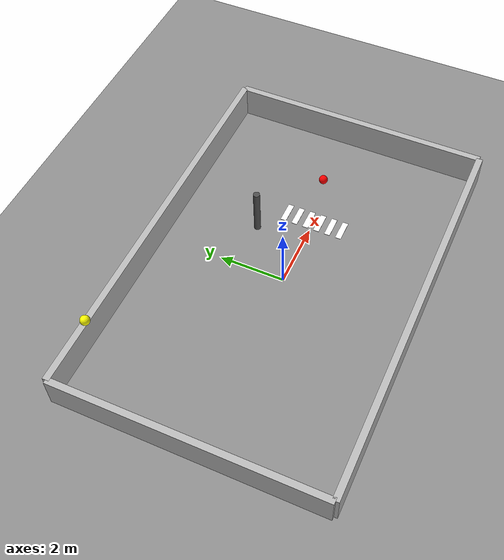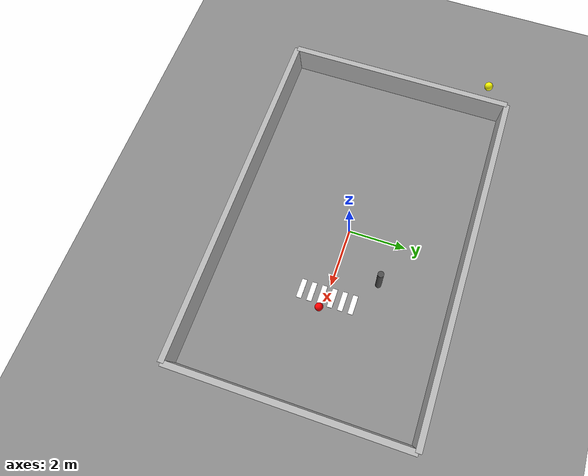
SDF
<?xml version='1.0' encoding='utf-8'?>
<sdf version="1.6"><world name="travessia_controlada">
  <physics type="ode"><max_step_size>0.001</max_step_size><real_time_update_rate>1000</real_time_update_rate></physics>
  <plugin name="world_state" filename="libgazebo_ros_state.so"><ros><namespace>/gazebo</namespace></ros><update_rate>10</update_rate></plugin>
  <gravity>0 0 -9.81</gravity>
  <scene><ambient>0.5 0.5 0.5 1</ambient><background>0.75 0.85 0.95 1</background><shadows>false</shadows></scene>
  <light name="sun" type="directional"><pose>0 0 10 0 0 0</pose><diffuse>0.8 0.8 0.8 1</diffuse><specular>0.2 0.2 0.2 1</specular><direction>-0.5 0.2 -1</direction><cast_shadows>false</cast_shadows></light>
  <model name="ground"><static>true</static><link name="ground_link">
    <collision name="collision"><geometry><plane><normal>0 0 1</normal><size>20 20</size></plane></geometry></collision>
    <visual name="visual"><geometry><plane><normal>0 0 1</normal><size>20 20</size></plane></geometry><material><ambient>0.55 0.55 0.55 1</ambient><diffuse>0.55 0.55 0.55 1</diffuse></material></visual>
  </link></model>
  <model name="poste"><static>true</static><pose>1.5 1.5 0.75 0 0 0</pose><link name="link">
    <collision name="collision"><geometry><cylinder><radius>0.1</radius><length>1.5</length></cylinder></geometry></collision>
    <visual name="visual"><geometry><cylinder><radius>0.1</radius><length>1.5</length></cylinder></geometry><material><ambient>0.3 0.3 0.3 1</ambient><diffuse>0.3 0.3 0.3 1</diffuse></material></visual>
  </link></model>
  <gui><camera name="user_camera"><pose>4 -5 3 0 0.4 2.3</pose></camera></gui>
<model name="limite_norte"><static>true</static><pose>0 4 .5 0 0 0</pose><link name="link"><collision name="collision"><geometry><box><size>12 0.2 1</size></box></geometry></collision><visual name="visual"><geometry><box><size>12 0.2 1</size></box></geometry></visual></link></model><model name="limite_sul"><static>true</static><pose>0 -4 .5 0 0 0</pose><link name="link"><collision name="collision"><geometry><box><size>12 0.2 1</size></box></geometry></collision><visual name="visual"><geometry><box><size>12 0.2 1</size></box></geometry></visual></link></model><model name="limite_leste"><static>true</static><pose>6 0 .5 0 0 0</pose><link name="link"><collision name="collision"><geometry><box><size>0.2 8 1</size></box></geometry></collision><visual name="visual"><geometry><box><size>0.2 8 1</size></box></geometry></visual></link></model><model name="limite_oeste"><static>true</static><pose>-6 0 .5 0 0 0</pose><link name="link"><collision name="collision"><geometry><box><size>0.2 8 1</size></box></geometry></collision><visual name="visual"><geometry><box><size>0.2 8 1</size></box></geometry></visual></link></model><model name="lamp_red"><static>true</static><pose>3 0 1.3 0 0 0</pose><link name="lamp"><visual name="light"><geometry><sphere><radius>.13</radius></sphere></geometry><material><ambient>1 0 0 1</ambient><diffuse>1 0 0 1</diffuse><emissive>1 0 0 1</emissive></material></visual></link></model><model name="lamp_yellow"><static>true</static><pose>-5 3 3 0 0 0</pose><link name="lamp"><visual name="light"><geometry><sphere><radius>.13</radius></sphere></geometry><material><ambient>1 1 0 1</ambient><diffuse>1 1 0 1</diffuse><emissive>1 1 0 1</emissive></material></visual></link></model><model name="lamp_green"><static>true</static><pose>-5 3 3 0 0 0</pose><link name="lamp"><visual name="light"><geometry><sphere><radius>.13</radius></sphere></geometry><material><ambient>0 1 0 1</ambient><diffuse>0 1 0 1</diffuse><emissive>0 1 0 1</emissive></material></visual></link></model><model name="faixa_0"><static>true</static><pose>2.4 -0.9 .004 0 0 0</pose><link name="stripe"><visual name="visual"><geometry><box><size>.65 .18 .008</size></box></geometry><material><ambient>1 1 1 1</ambient><diffuse>1 1 1 1</diffuse></material></visual></link></model><model name="faixa_1"><static>true</static><pose>2.4 -0.54 .004 0 0 0</pose><link name="stripe"><visual name="visual"><geometry><box><size>.65 .18 .008</size></box></geometry><material><ambient>1 1 1 1</ambient><diffuse>1 1 1 1</diffuse></material></visual></link></model><model name="faixa_2"><static>true</static><pose>2.4 -0.18000000000000005 .004 0 0 0</pose><link name="stripe"><visual name="visual"><geometry><box><size>.65 .18 .008</size></box></geometry><material><ambient>1 1 1 1</ambient><diffuse>1 1 1 1</diffuse></material></visual></link></model><model name="faixa_3"><static>true</static><pose>2.4 0.18000000000000005 .004 0 0 0</pose><link name="stripe"><visual name="visual"><geometry><box><size>.65 .18 .008</size></box></geometry><material><ambient>1 1 1 1</ambient><diffuse>1 1 1 1</diffuse></material></visual></link></model><model name="faixa_4"><static>true</static><pose>2.4 0.5399999999999999 .004 0 0 0</pose><link name="stripe"><visual name="visual"><geometry><box><size>.65 .18 .008</size></box></geometry><material><ambient>1 1 1 1</ambient><diffuse>1 1 1 1</diffuse></material></visual></link></model><model name="faixa_5"><static>true</static><pose>2.4 0.8999999999999998 .004 0 0 0</pose><link name="stripe"><visual name="visual"><geometry><box><size>.65 .18 .008</size></box></geometry><material><ambient>1 1 1 1</ambient><diffuse>1 1 1 1</diffuse></material></visual></link></model></world></sdf>
